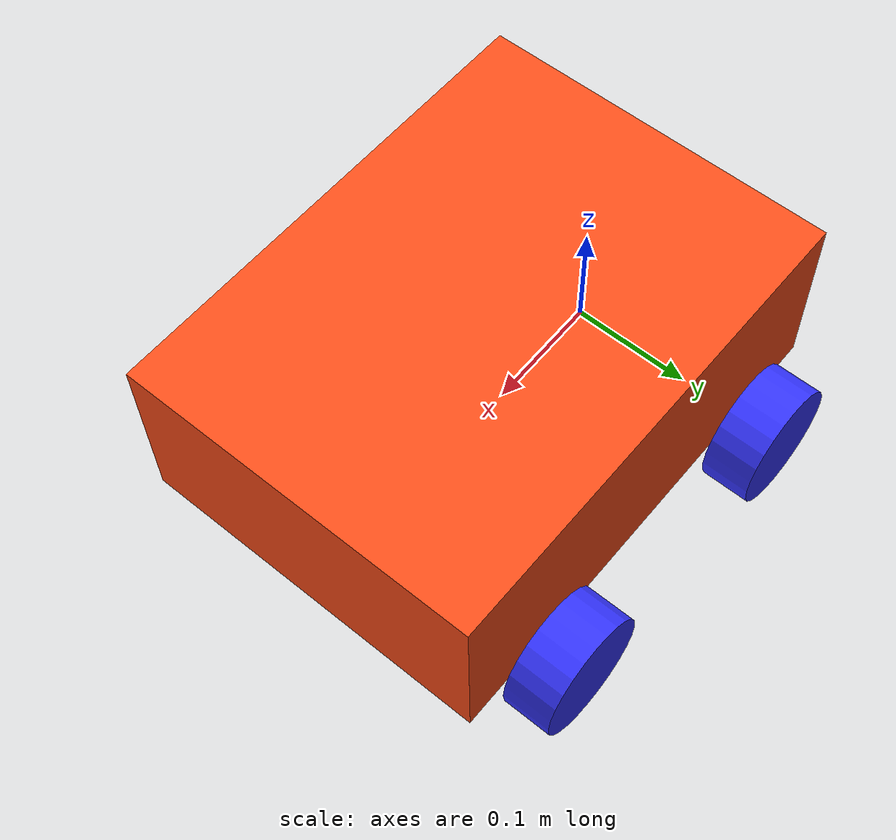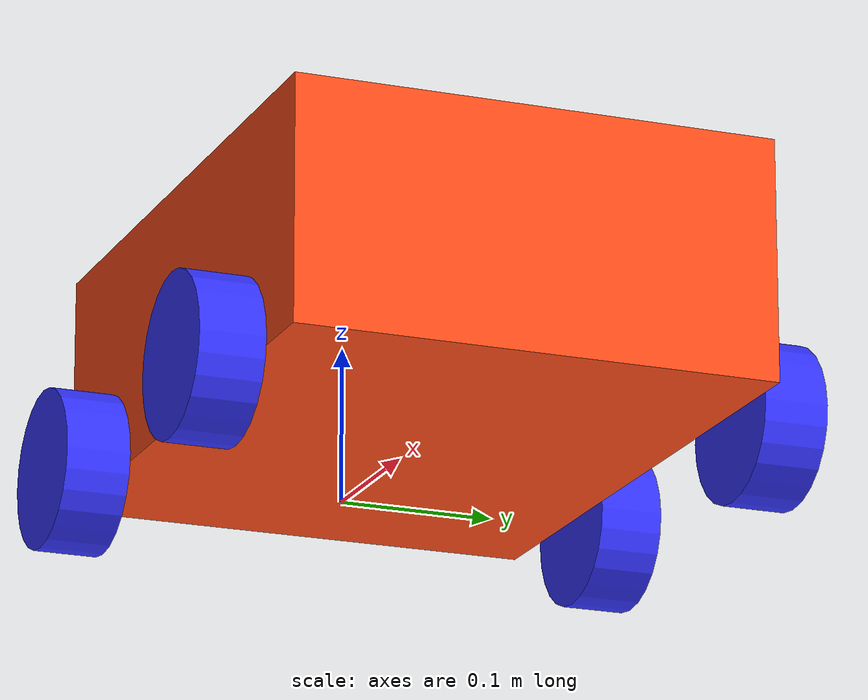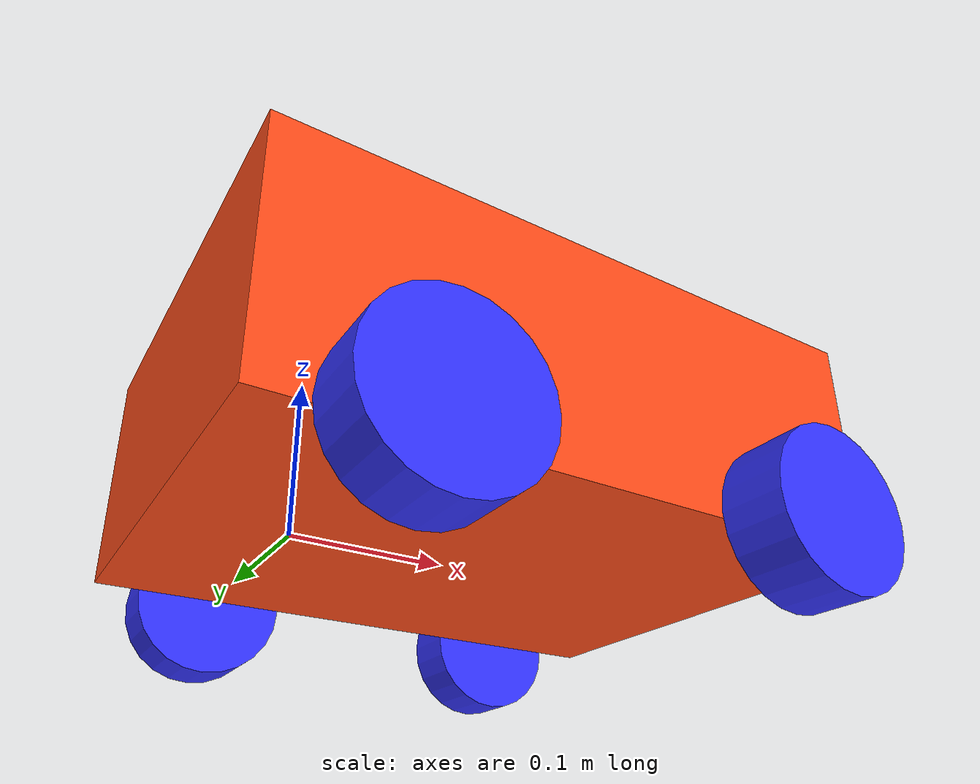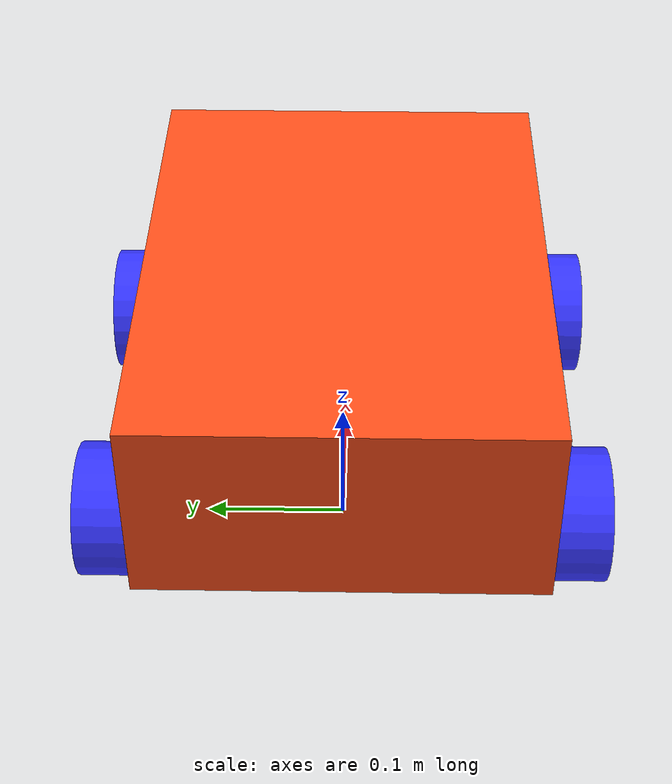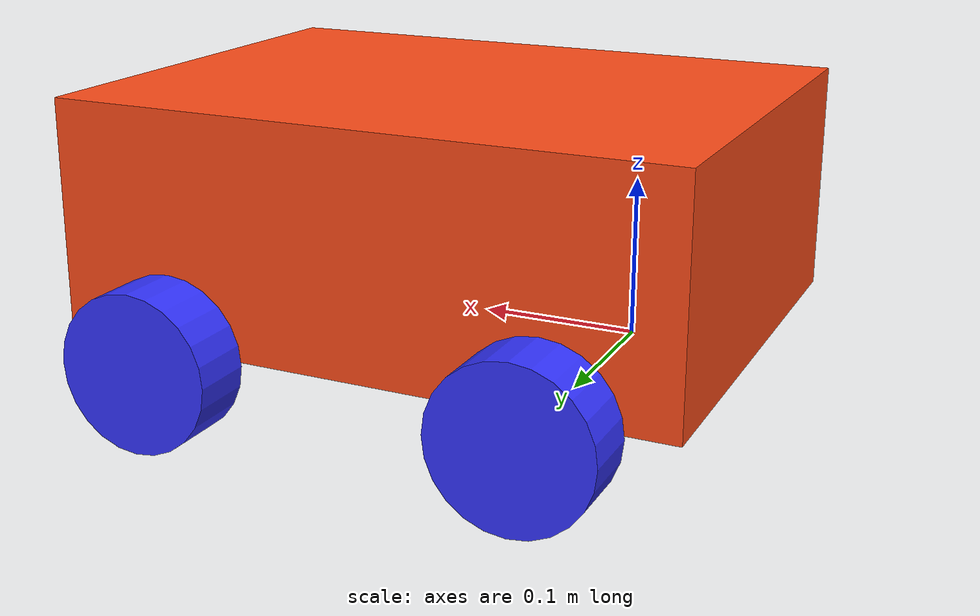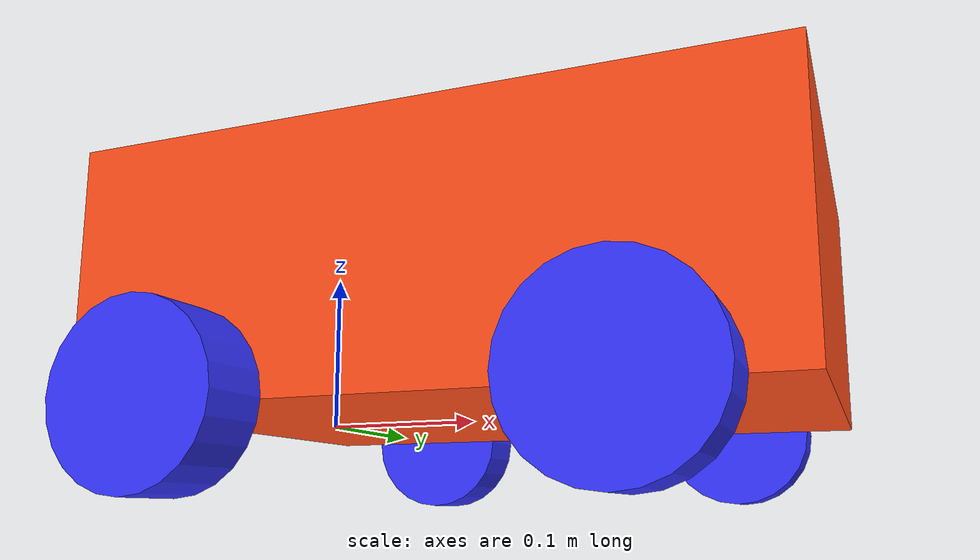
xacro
<?xml version="1.0"?>

<robot xmlns:xacro="http://www.ros.org/wiki/xacro"  name="robot">

    <xacro:include filename="inertial_macros.xacro"/>

    <material name="white">
        <color rgba="1 1 1 1" />
    </material>

    <material name="orange">
        <color rgba="1 0.3 0.1 1"/>
    </material>

    <material name="blue">
        <color rgba="0.2 0.2 1 1"/>
    </material>

    <material name="black">
        <color rgba="0 0 0 1"/>
    </material>

    <material name="red">
        <color rgba="1 0 0 1"/>
    </material>

    <!-- BASE LINK -->

    <link name="base_link">

    </link>

    <!-- BASE_FOOTPRINT LINK -->

    <joint name="base_footprint_joint" type="fixed">
        <parent link="base_link"/>
        <child link="base_footprint"/>
        <origin xyz="0 0 0" rpy="0 0 0"/>
    </joint>

    <link name="base_footprint">
    </link>

    <!-- CHASSIS LINK -->

    <joint name="chassis_joint" type="fixed">
        <parent link="base_link"/>
        <child link="chassis"/>
        <origin xyz="-0.08 0 0"/>
    </joint>

    <link name="chassis">
        <visual>
            <origin xyz="0.2 0 0.075"/>
            <geometry>
                <box size="0.4 0.3 0.15"/>
            </geometry>
            <material name="orange"/>
        </visual>
        <!-- COLLISION TAG DEFINES VOLUME OF CERTAIN LINK -->
        <collision>
            <origin xyz="0.2 0 0.075"/>
            <geometry>
                <box size="0.4 0.3 0.15"/>
            </geometry>
        </collision>
        <!-- INERTIA TAG :RESISTANCE TO MOTION -->
        <xacro:inertial_box mass="0.5" x="0.4" y="0.3" z="0.15">
            <origin xyz="0.2 0 0.075" rpy="0 0 0"/>
        </xacro:inertial_box>
    </link>
    <gazebo reference="chassis">
        <material>Gazebo/Orange</material>
    </gazebo>

    <!-- LEFT BACK WHEEL LINK -->

    <joint name="left_back_wheel_hinge" type="continuous">
        <parent link="base_link"/>
        <child link="left_back_wheel"/>
        <origin xyz="0 0.175 0" rpy="-${pi/2} 0 0" />
        <axis xyz="0 0 1"/>
    </joint>

    <link name="left_back_wheel">
        <visual>
            <geometry>
                <cylinder radius="0.05" length="0.04"/>
            </geometry>
            <material name="blue"/>
        </visual>
        <collision>
            <geometry>
                <sphere radius="0.05"/>
            </geometry>
            <surface>
                <friction>
                    <fdir1>1 0 0</fdir1>
                    <!-- kp and kd for rubber -->
                    <mu1>0.05</mu1>
                    <mu2>0.05</mu2>
                    <slip1>0.5</slip1>
                    <slip2>0.0</slip2>
                </friction>
            </surface>
        </collision>
        <xacro:inertial_cylinder mass="0.1" length="0.04" radius="0.05">
            <origin xyz="0 0 0" rpy="0 0 0"/>
        </xacro:inertial_cylinder>

    </link>
    <gazebo reference="left_back_wheel">
        <material>Gazebo/Blue</material>
        <!-- kp and kd for rubber -->
        <mu1>0.05</mu1>
        <mu2>0.05</mu2>
    </gazebo>

    <!-- LEFT FRONT WHEEL LINK -->

    <joint name="left_front_wheel_hinge" type="continuous">
        <parent link="base_link"/>
        <child link="left_front_wheel"/>
        <origin xyz="0.24 0.175 0" rpy="-${pi/2} 0 0" />
        <axis xyz="0 0 1"/>
    </joint>

    <link name="left_front_wheel">
        <visual>
            <geometry>
                <cylinder radius="0.05" length="0.04"/>
            </geometry>
            <material name="blue"/>
        </visual>
        <collision>
            <geometry>
                <sphere radius="0.05"/>
            </geometry>
            <surface>
                <friction>
                    <fdir1>1 0 0</fdir1>
                    <!-- kp and kd for rubber -->
                    <mu1>0.05</mu1>
                    <mu2>0.05</mu2>
                    <slip1>0.5</slip1>
                    <slip2>0.0</slip2>
                </friction>
            </surface>
        </collision>
        <xacro:inertial_cylinder mass="0.1" length="0.04" radius="0.05">
            <origin xyz="0 0 0" rpy="0 0 0"/>
        </xacro:inertial_cylinder>

    </link>
    <gazebo reference="left_front_wheel">
        <material>Gazebo/Blue</material>
        <!-- kp and kd for rubber -->
        <mu1>0.05</mu1>
        <mu2>0.05</mu2>
    </gazebo>

    <!-- RIGHT BACK WHEEL -->

    <joint name="right_back_wheel_hinge" type="continuous">
        <parent link="base_link"/>
        <child link="right_back_wheel"/>
        <origin xyz="0 -0.175 0" rpy="${pi/2} 0 0" />
        <axis xyz="0 0 -1"/>
    </joint>

    <link name="right_back_wheel">
        <visual>
            <geometry>
                <cylinder radius="0.05" length="0.04"/>
            </geometry>
            <material name="blue"/>
        </visual>
        <collision>
            <geometry>
                <sphere radius="0.05"/>
            </geometry>
            <surface>
                <friction>
                    <fdir1>1 0 0</fdir1>
                    <!-- kp and kd for rubber -->
                    <mu1>0.05</mu1>
                    <mu2>0.05</mu2>
                    <slip1>0.5</slip1>
                    <slip2>0.0</slip2>
                </friction>
            </surface>
        </collision>
        <xacro:inertial_cylinder mass="0.1" length="0.04" radius="0.05">
            <origin xyz="0 0 0" rpy="0 0 0"/>
        </xacro:inertial_cylinder>
    </link>
    <gazebo reference="right_back_wheel">
        <material>Gazebo/Blue</material>
        <!-- kp and kd for rubber -->
        <mu1>0.05</mu1>
        <mu2>0.05</mu2>
    </gazebo>

    <!-- RIGHT FRONT WHEEL -->

    <joint name="right_front_wheel_hinge" type="continuous">
        <parent link="base_link"/>
        <child link="right_front_wheel"/>
        <origin xyz="0.24 -0.175 0" rpy="${pi/2} 0 0" />
        <axis xyz="0 0 -1"/>
    </joint>

    <link name="right_front_wheel">
        <visual>
            <geometry>
                <cylinder radius="0.05" length="0.04"/>
            </geometry>
            <material name="blue"/>
        </visual>
        <collision>
            <geometry>
                <sphere radius="0.05"/>
            </geometry>
            <surface>
                <friction>
                    <fdir1>1 0 0</fdir1>
                    <!-- kp and kd for rubber -->
                    <mu1>0.05</mu1>
                    <mu2>0.05</mu2>
                    <slip1>0.5</slip1>
                    <slip2>0.0</slip2>
                </friction>
            </surface>
        </collision>
        <xacro:inertial_cylinder mass="0.1" length="0.04" radius="0.05">
            <origin xyz="0 0 0" rpy="0 0 0"/>
        </xacro:inertial_cylinder>
    </link>
    <gazebo reference="right_front_wheel">
        <material>Gazebo/Blue</material>
        <!-- kp and kd for rubber -->
        <mu1>0.05</mu1>
        <mu2>0.05</mu2>
    </gazebo>

</robot>
